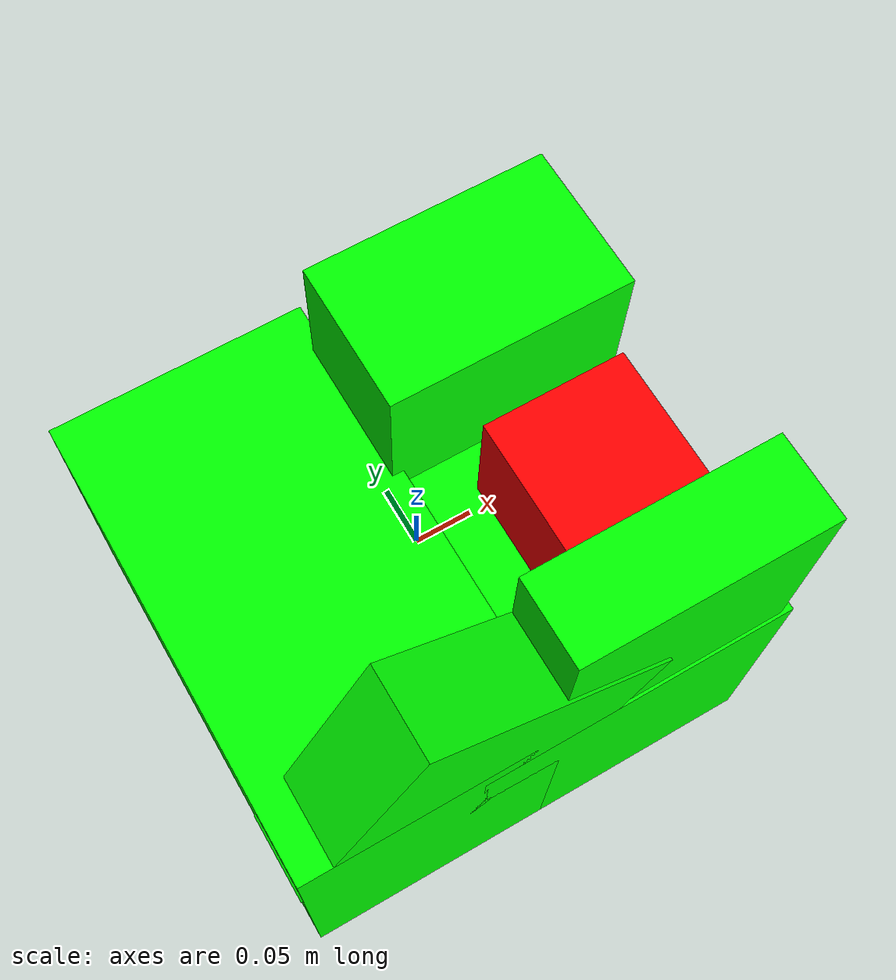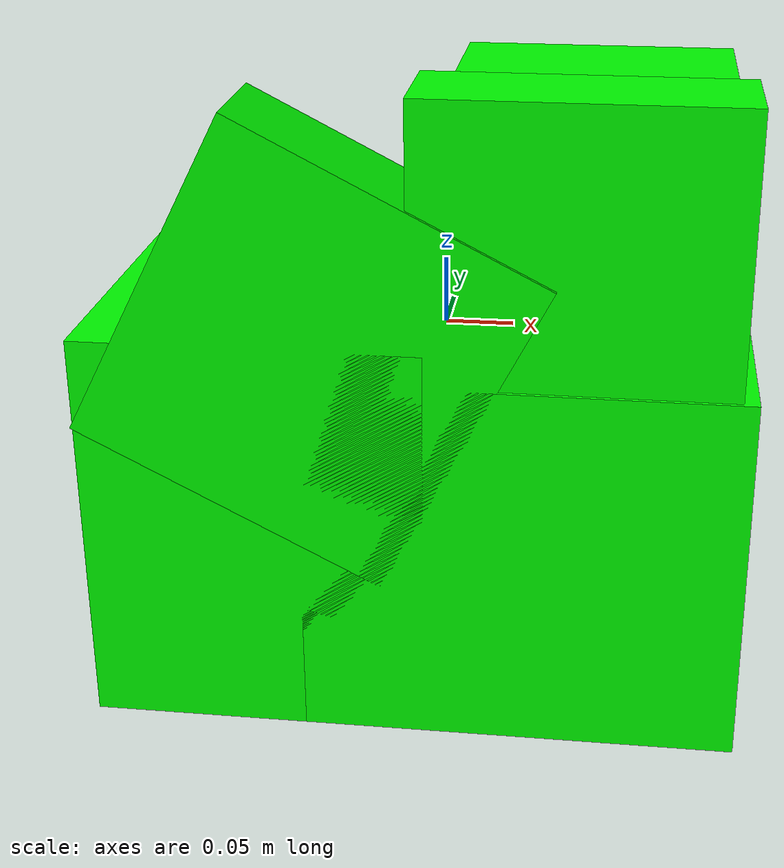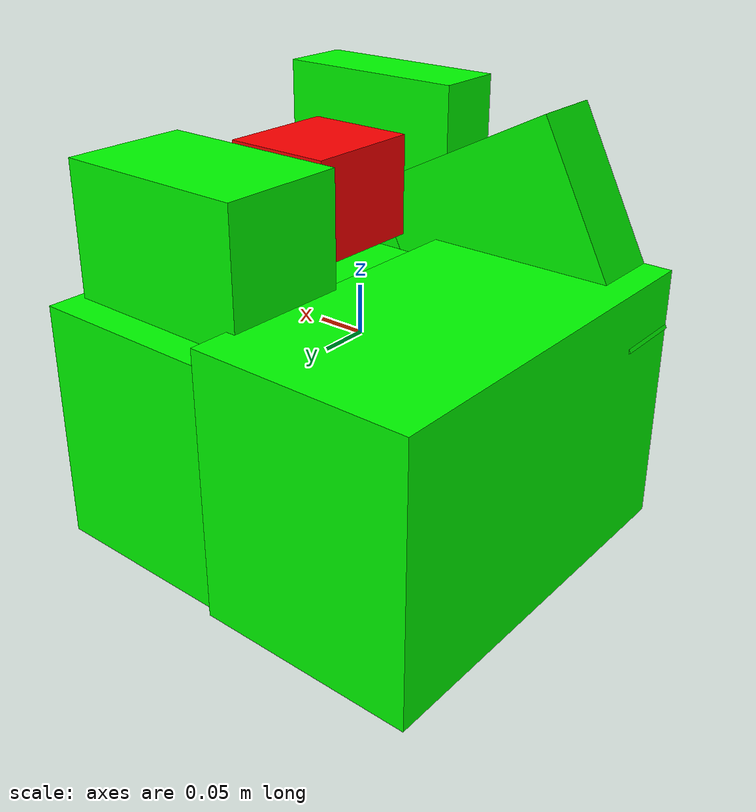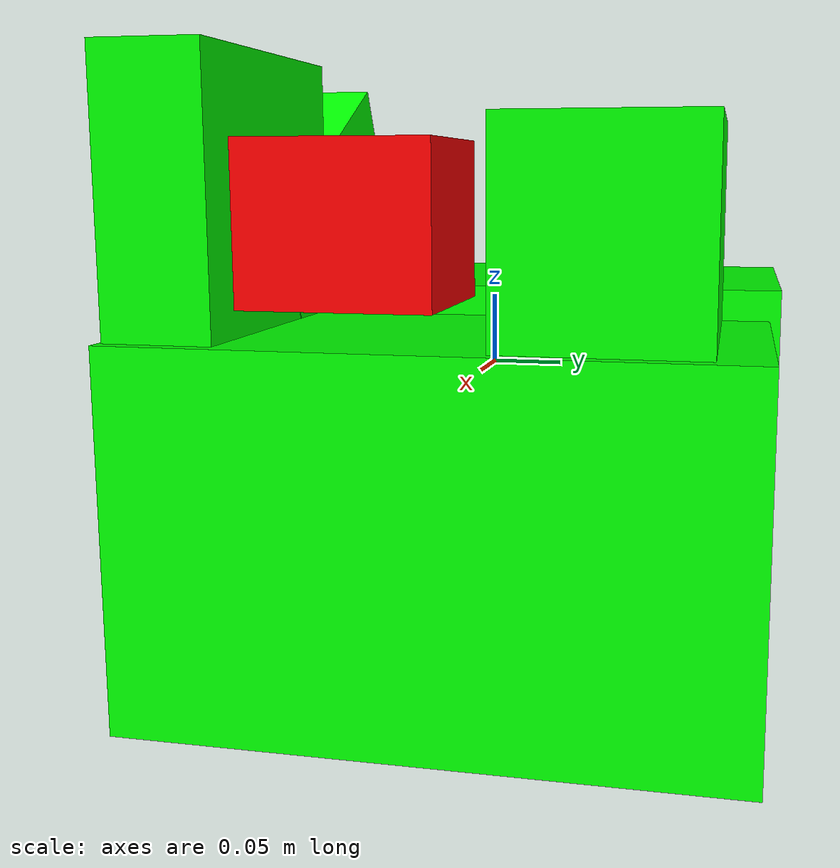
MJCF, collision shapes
<mujoco model="coffee_machine_21">
  <compiler autolimits="true" boundmass="0.01" angle="radian"/>
  <default>
    <default class="/">
      <default class="__VISUAL_MJT__">
        <geom contype="0" conaffinity="0" group="0"/>
      </default>
      <default class="__STRUCTURAL_MJT__">
        <geom contype="8" conaffinity="15" group="4" friction="0.90000000000000002 0.90000000000000002 0.001" solref="0.025000000000000001 1" solimp="0.998 0.998 0.001"/>
      </default>
      <default class="__DYNAMIC_MJT__">
        <geom contype="1" conaffinity="15" group="4" friction="0.90000000000000002 0.90000000000000002 0.001" solref="0.025000000000000001 1" solimp="0.998 0.998 0.001"/>
      </default>
    </default>
  </default>
  <asset>
    <material name="material_coffee_machine_backup_mat" class="/" specular="0.5" shininess="0.5" rgba="0.5 0.5 0.5 1"/>
    <material name="material_Coffee_Machine_Readout_Mat_Off" class="/" specular="0.5" shininess="0.5" rgba="0 0 0 1"/>
    <texture name="Coffee_Machine_Decal_Mat" type="2d" file="Coffee_Machine_Decal_AlbedoTransparency.png"/>
    <material name="material_Coffee_Machine_Decal_Mat" class="/" texture="Coffee_Machine_Decal_Mat" specular="0.5" shininess="0.5" rgba="1 1 1 1"/>
    <texture name="Coffee_Machine_Metal_Mat" type="2d" file="MetalBumpy_AlbedoTransparency.png"/>
    <material name="material_Coffee_Machine_Metal_Mat" class="/" texture="Coffee_Machine_Metal_Mat" specular="0.5" shininess="0.5" rgba="0.66176469999999998 0.66176469999999998 0.66176469999999998 1"/>
    <texture name="Coffee_Machine_Secondary1_Color_Mat" type="2d" file="BrushedIron_AlbedoTransparency.png"/>
    <material name="material_Coffee_Machine_Secondary1_Color_Mat" class="/" texture="Coffee_Machine_Secondary1_Color_Mat" specular="0.5" shininess="0.5" rgba="0.51470590000000005 0.51470590000000005 0.51470590000000005 1"/>
    <texture name="Coffee_Machine_Primary1_Color_Mat" type="2d" file="BumpyPlastic_Albedo.png"/>
    <material name="material_Coffee_Machine_Primary1_Color_Mat" class="/" texture="Coffee_Machine_Primary1_Color_Mat" specular="0.5" shininess="0.5" rgba="0.234375 0.34090910000000002 0.625 1"/>
    <mesh name="coffee_machine_21_coffee_machine_21_0" class="/" file="coffee_machine_21_coffee_machine_21/coffee_machine_21_coffee_machine_21_0.obj" scale="1 1 1"/>
    <mesh name="coffee_machine_21_coffee_machine_21_1" class="/" file="coffee_machine_21_coffee_machine_21/coffee_machine_21_coffee_machine_21_1.obj" scale="1 1 1"/>
    <mesh name="coffee_machine_21_coffee_machine_21_2" class="/" file="coffee_machine_21_coffee_machine_21/coffee_machine_21_coffee_machine_21_2.obj" scale="1 1 1"/>
    <mesh name="coffee_machine_21_coffee_machine_21_3" class="/" file="coffee_machine_21_coffee_machine_21/coffee_machine_21_coffee_machine_21_3.obj" scale="1 1 1"/>
    <mesh name="coffee_machine_21_coffee_machine_21_4" class="/" file="coffee_machine_21_coffee_machine_21/coffee_machine_21_coffee_machine_21_4.obj" scale="1 1 1"/>
    <mesh name="coffee_machine_21_coffee_machine_21_5" class="/" file="coffee_machine_21_coffee_machine_21/coffee_machine_21_coffee_machine_21_5.obj" scale="1 1 1"/>
  </asset>
  <worldbody>
    <body name="coffee_machine_21">
      <joint name="coffee_machine_21_free" class="/" type="free" pos="0 0 0" axis="0 0 1" stiffness="0" range="0 0" armature="0" damping="0.10000000000000001" frictionloss="0"/>
      <body name="coffee_machine_21_coffee_machine_21" pos="-0.00098999999999999999 -0.20973 -0.063780000000000003" quat="1 0 0 0">
        <geom name="coffee_machine_21_coffee_machine_21_0" class="__VISUAL_MJT__" type="mesh" material="material_coffee_machine_backup_mat" shellinertia="true" mesh="coffee_machine_21_coffee_machine_21_0"/>
        <geom name="coffee_machine_21_coffee_machine_21_1" class="__VISUAL_MJT__" type="mesh" material="material_Coffee_Machine_Readout_Mat_Off" shellinertia="true" mesh="coffee_machine_21_coffee_machine_21_1"/>
        <geom name="coffee_machine_21_coffee_machine_21_2" class="__VISUAL_MJT__" type="mesh" material="material_Coffee_Machine_Decal_Mat" shellinertia="true" mesh="coffee_machine_21_coffee_machine_21_2"/>
        <geom name="coffee_machine_21_coffee_machine_21_3" class="__VISUAL_MJT__" type="mesh" material="material_Coffee_Machine_Metal_Mat" shellinertia="false" mesh="coffee_machine_21_coffee_machine_21_3"/>
        <geom name="coffee_machine_21_coffee_machine_21_4" class="__VISUAL_MJT__" type="mesh" material="material_Coffee_Machine_Secondary1_Color_Mat" shellinertia="false" mesh="coffee_machine_21_coffee_machine_21_4"/>
        <geom name="coffee_machine_21_coffee_machine_21_5" class="__VISUAL_MJT__" type="mesh" material="material_Coffee_Machine_Primary1_Color_Mat" shellinertia="false" mesh="coffee_machine_21_coffee_machine_21_5"/>
        <site name="coffee_machine_21_Receptacle_0" class="/" type="box" rgba="1 0 0 1" size="0.060327447950839996 0.064783036708831787 0.054310537874698639" pos="0.11389999836683273 0.14078304171562195 0.17170000076293945" quat="1 0 0 0"/>
        <geom name="coffee_machine_21_PrimitiveCollider_0" class="__DYNAMIC_MJT__" type="box" size="0.11464953422546387 0.20972719788551331 0.13851548731327057" rgba="0 1 0 1" pos="-0.10458827018737793 0.20972719788551331 -0.017326846718788147" quat="1 0 0 0"/>
        <geom name="coffee_machine_21_PrimitiveCollider_1" class="__DYNAMIC_MJT__" type="box" size="0.14542126655578613 0.20593342185020447 0.12745000422000885" rgba="0 1 0 1" pos="0.073718786239624023 0.20593342185020447 -0.028392329812049866" quat="1 0 0 0"/>
        <geom name="coffee_machine_21_PrimitiveCollider_2" class="__DYNAMIC_MJT__" type="box" size="0.10469004511833191 0.065774440765380859 0.14512777328491211" rgba="0 1 0 1" pos="0.10454031825065613 0.3124205470085144 0.093667984008789062" quat="1 0 0 0"/>
        <geom name="coffee_machine_21_PrimitiveCollider_3" class="__DYNAMIC_MJT__" type="box" size="0.10469004511833191 0.03673243522644043 0.1674354076385498" rgba="0 1 0 1" pos="0.10454031825065613 0.039257943630218506 0.11597561836242676" quat="1 0 0 0"/>
        <geom name="coffee_machine_21_PrimitiveCollider_4" class="__DYNAMIC_MJT__" type="box" size="0.11464953422546387 0.038222759962081909 0.11959648132324219" rgba="0 1 0 1" pos="-0.064367718994617462 0.038222771137952805 0.11350990831851959" quat="0.9717065691947937 3.7477192450437213e-16 0.23619133234024048 2.8156200926332531e-08"/>
      </body>
    </body>
  </worldbody>
</mujoco>
